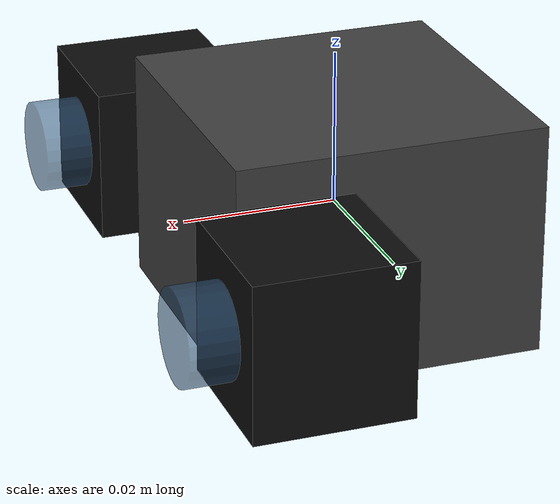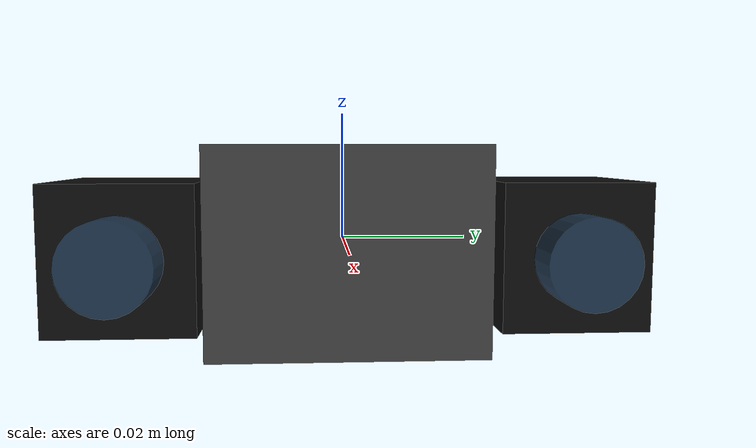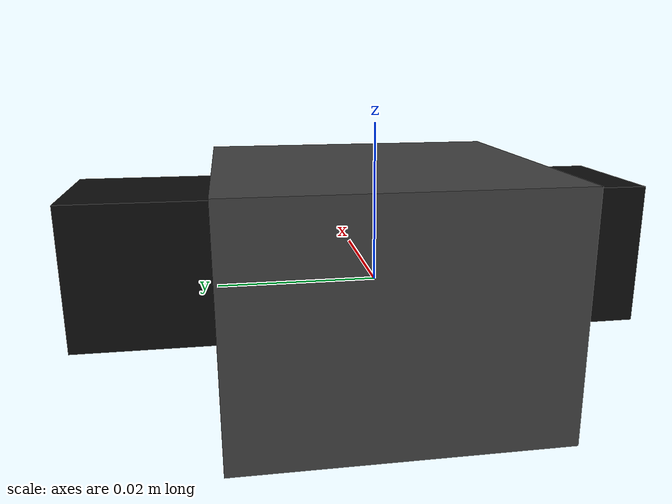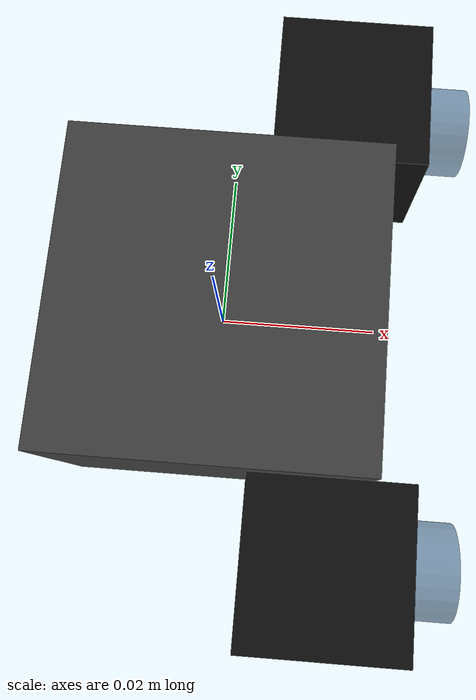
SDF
<?xml version="1.0"?>
<sdf version="1.9">
  <model name="static_camera">
    <!-- Set true if you want it anchored in the world -->
    <static>true</static>

    <!-- Base link -->
    <link name="camera_base">
      <pose>0 0 0 0 0 0</pose>
      <inertial>
        <mass>0.05</mass>
        <inertia>
          <ixx>1e-5</ixx><ixy>0</ixy><ixz>0</ixz>
          <iyy>1e-5</iyy><iyz>0</iyz>
          <izz>1e-5</izz>
        </inertia>
      </inertial>

      <collision name="base_collision">
        <geometry>
          <box><size>0.04 0.04 0.03</size></box>
        </geometry>
      </collision>

      <visual name="base_visual">
        <geometry>
          <box><size>0.04 0.04 0.03</size></box>
        </geometry>
        <material>
          <ambient>0.25 0.25 0.25 1</ambient>
          <diffuse>0.25 0.25 0.25 1</diffuse>
          <specular>0.10 0.10 0.10 1</specular>
        </material>
      </visual>

      <!-- RGB camera sensor (Gazebo Sim / SDF) -->
      <sensor name="rgb_camera" type="camera">
        <always_on>true</always_on>
        <update_rate>30</update_rate>
        <topic>/cam/rgb/image_raw</topic>
        <camera>
          <horizontal_fov>1.047</horizontal_fov>
          <image>
            <width>1280</width>
            <height>720</height>
            <format>R8G8B8</format>
          </image>
          <clip>
            <near>0.05</near>
            <far>10.0</far>
          </clip>
        </camera>
      </sensor>

      <!-- Depth camera sensor (Gazebo Sim / SDF) -->
      <sensor name="depth_camera" type="depth_camera">
        <always_on>true</always_on>
        <update_rate>30</update_rate>
        <topic>/cam/depth/image_raw</topic>
        <camera>
          <horizontal_fov>1.047</horizontal_fov>
          <image>
            <width>640</width>
            <height>480</height>
            <format>R8G8B8</format>
          </image>
          <clip>
            <near>0.1</near>
            <far>5.0</far>
          </clip>
        </camera>
      </sensor>
    </link>

    <!-- Left camera link (placed at +Y) -->
    <link name="camera_left_link">
      <pose>0 0.03 0 0 0 0</pose>
      <inertial>
        <mass>0.01</mass>
        <inertia>
          <ixx>2e-6</ixx><ixy>0</ixy><ixz>0</ixz>
          <iyy>2e-6</iyy><iyz>0</iyz>
          <izz>2e-6</izz>
        </inertia>
      </inertial>

      <collision name="left_housing_collision">
        <pose>0.015 0 0 0 0 0</pose>
        <geometry>
          <box><size>0.02 0.02 0.02</size></box>
        </geometry>
      </collision>

      <visual name="left_housing_visual">
        <pose>0.015 0 0 0 0 0</pose>
        <geometry>
          <box><size>0.02 0.02 0.02</size></box>
        </geometry>
        <material>
          <ambient>0.05 0.05 0.05 1</ambient>
          <diffuse>0.05 0.05 0.05 1</diffuse>
          <specular>0.20 0.20 0.20 1</specular>
        </material>
      </visual>

      <visual name="left_lens_visual">
        <!-- Cylinder is along Z by default; rotate so it points along +X -->
        <pose>0.027 0 0 0 1.5708 0</pose>
        <geometry>
          <cylinder><radius>0.006</radius><length>0.008</length></cylinder>
        </geometry>
        <material>
          <ambient>0.20 0.35 0.50 0.60</ambient>
          <diffuse>0.20 0.35 0.50 0.60</diffuse>
          <specular>0.60 0.60 0.60 0.60</specular>
          <emissive>0.00 0.00 0.00 0.00</emissive>
        </material>
      </visual>

      <sensor name="stereo_left" type="camera">
        <always_on>true</always_on>
        <update_rate>30</update_rate>
        <topic>/cam/stereo/left/image_raw</topic>
        <camera>
          <horizontal_fov>1.047</horizontal_fov>
          <image>
            <width>640</width>
            <height>480</height>
            <format>R8G8B8</format>
          </image>
          <clip>
            <near>0.05</near>
            <far>10.0</far>
          </clip>
        </camera>
      </sensor>
    </link>

    <!-- Right camera link (placed at -Y) -->
    <link name="camera_right_link">
      <pose>0 -0.03 0 0 0 0</pose>
      <inertial>
        <mass>0.01</mass>
        <inertia>
          <ixx>2e-6</ixx><ixy>0</ixy><ixz>0</ixz>
          <iyy>2e-6</iyy><iyz>0</iyz>
          <izz>2e-6</izz>
        </inertia>
      </inertial>

      <collision name="right_housing_collision">
        <pose>0.015 0 0 0 0 0</pose>
        <geometry>
          <box><size>0.02 0.02 0.02</size></box>
        </geometry>
      </collision>

      <visual name="right_housing_visual">
        <pose>0.015 0 0 0 0 0</pose>
        <geometry>
          <box><size>0.02 0.02 0.02</size></box>
        </geometry>
        <material>
          <ambient>0.05 0.05 0.05 1</ambient>
          <diffuse>0.05 0.05 0.05 1</diffuse>
          <specular>0.20 0.20 0.20 1</specular>
        </material>
      </visual>

      <visual name="right_lens_visual">
        <pose>0.027 0 0 0 1.5708 0</pose>
        <geometry>
          <cylinder><radius>0.006</radius><length>0.008</length></cylinder>
        </geometry>
        <material>
          <ambient>0.20 0.35 0.50 0.60</ambient>
          <diffuse>0.20 0.35 0.50 0.60</diffuse>
          <specular>0.60 0.60 0.60 0.60</specular>
          <emissive>0.00 0.00 0.00 0.00</emissive>
        </material>
      </visual>

      <sensor name="stereo_right" type="camera">
        <always_on>true</always_on>
        <update_rate>30</update_rate>
        <topic>/cam/stereo/right/image_raw</topic>
        <camera>
          <horizontal_fov>1.047</horizontal_fov>
          <image>
            <width>640</width>
            <height>480</height>
            <format>R8G8B8</format>
          </image>
          <clip>
            <near>0.05</near>
            <far>10.0</far>
          </clip>
        </camera>
      </sensor>
    </link>

    <joint name="left_joint" type="fixed">
      <parent>camera_base</parent>
      <child>camera_left_link</child>
    </joint>

    <joint name="right_joint" type="fixed">
      <parent>camera_base</parent>
      <child>camera_right_link</child>
    </joint>

  </model>
</sdf>
